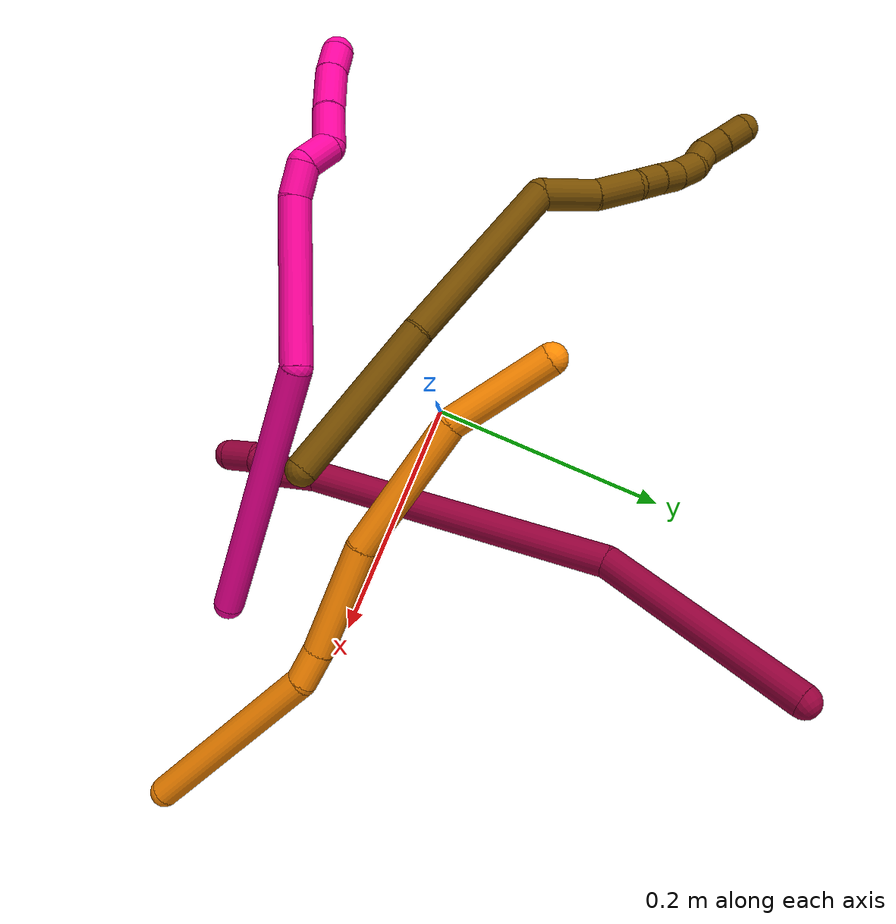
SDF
<sdf version="1.7">
 <world name="default">
  <model name="8">
   <static>0</static>
   <link name="8">
    <collision name="collision-cylinder-e_1_1_4">
     <pose>0.008684 -0.029291 -0.079978 2.79052 0.101601 0.558372</pose>
     <geometry><cylinder><radius>0.0125</radius><length>0.171229</length></cylinder></geometry>
     <surface>
      <friction><ode><mu>1.16</mu><mu2>1.16</mu2><slip1>0</slip1><slip2>0</slip2></ode></friction>
      <contact><ode><kp>1e+06</kp><kd>1</kd><max_vel>0</max_vel><min_depth>0.001</min_depth></ode></contact>
     </surface>
    </collision>
    <visual name="visual-cylinder-e_1_1_4">
     <pose>0.008684 -0.029291 -0.079978 2.79052 0.101601 0.558372</pose>
     <geometry><cylinder><radius>0.0125</radius><length>0.171229</length></cylinder></geometry>
     <material><ambient>0.584314 0 0.227451 1</ambient></material>
    </visual>
    <collision name="collision-cylinder-e_2_4_5">
     <pose>-0.000613 -0.131499 -0.25687 2.49656 -0.14718 -0.434258</pose>
     <geometry><cylinder><radius>0.0125</radius><length>0.245214</length></cylinder></geometry>
     <surface>
      <friction><ode><mu>1.16</mu><mu2>1.16</mu2><slip1>0</slip1><slip2>0</slip2></ode></friction>
      <contact><ode><kp>1e+06</kp><kd>1</kd><max_vel>0</max_vel><min_depth>0.001</min_depth></ode></contact>
     </surface>
    </collision>
    <visual name="visual-cylinder-e_2_4_5">
     <pose>-0.000613 -0.131499 -0.25687 2.49656 -0.14718 -0.434258</pose>
     <geometry><cylinder><radius>0.0125</radius><length>0.245214</length></cylinder></geometry>
     <material><ambient>0.584314 0 0.227451 1</ambient></material>
    </visual>
    <collision name="collision-cylinder-e_3_5_6">
     <pose>-0.025406 -0.215491 -0.364511 2.34028 -0.416069 -0.924665</pose>
     <geometry><cylinder><radius>0.0125</radius><length>0.033713</length></cylinder></geometry>
     <surface>
      <friction><ode><mu>1.16</mu><mu2>1.16</mu2><slip1>0</slip1><slip2>0</slip2></ode></friction>
      <contact><ode><kp>1e+06</kp><kd>1</kd><max_vel>0</max_vel><min_depth>0.001</min_depth></ode></contact>
     </surface>
    </collision>
    <visual name="visual-cylinder-e_3_5_6">
     <pose>-0.025406 -0.215491 -0.364511 2.34028 -0.416069 -0.924665</pose>
     <geometry><cylinder><radius>0.0125</radius><length>0.033713</length></cylinder></geometry>
     <material><ambient>0.584314 0 0.227451 1</ambient></material>
    </visual>
    <collision name="collision-cylinder-e_4_6_7">
     <pose>-0.031509 -0.230352 -0.385416 2.78545 0.065271 0.358881</pose>
     <geometry><cylinder><radius>0.0125</radius><length>0.021764</length></cylinder></geometry>
     <surface>
      <friction><ode><mu>1.16</mu><mu2>1.16</mu2><slip1>0</slip1><slip2>0</slip2></ode></friction>
      <contact><ode><kp>1e+06</kp><kd>1</kd><max_vel>0</max_vel><min_depth>0.001</min_depth></ode></contact>
     </surface>
    </collision>
    <visual name="visual-cylinder-e_4_6_7">
     <pose>-0.031509 -0.230352 -0.385416 2.78545 0.065271 0.358881</pose>
     <geometry><cylinder><radius>0.0125</radius><length>0.021764</length></cylinder></geometry>
     <material><ambient>0.584314 0 0.227451 1</ambient></material>
    </visual>
    <collision name="collision-cylinder-e_5_7_2">
     <pose>-0.030324 -0.244282 -0.405288 2.33351 0.033882 0.079211</pose>
     <geometry><cylinder><radius>0.0125</radius><length>0.02808</length></cylinder></geometry>
     <surface>
      <friction><ode><mu>1.16</mu><mu2>1.16</mu2><slip1>0</slip1><slip2>0</slip2></ode></friction>
      <contact><ode><kp>1e+06</kp><kd>1</kd><max_vel>0</max_vel><min_depth>0.001</min_depth></ode></contact>
     </surface>
    </collision>
    <visual name="visual-cylinder-e_5_7_2">
     <pose>-0.030324 -0.244282 -0.405288 2.33351 0.033882 0.079211</pose>
     <geometry><cylinder><radius>0.0125</radius><length>0.02808</length></cylinder></geometry>
     <material><ambient>0.584314 0 0.227451 1</ambient></material>
    </visual>
    <collision name="collision-sphere-2">
     <pose>-0.029848 -0.254427 -0.414982 0 -0 0</pose>
     <geometry><sphere><radius>0.0125</radius></sphere></geometry>
     <surface>
      <friction><ode><mu>1.16</mu><mu2>1.16</mu2><slip1>0</slip1><slip2>0</slip2></ode></friction>
      <contact><ode><kp>1e+06</kp><kd>1</kd><max_vel>0</max_vel><min_depth>0.001</min_depth></ode></contact>
     </surface>
    </collision>
    <visual name="visual-sphere-2">
     <pose>-0.029848 -0.254427 -0.414982 0 -0 0</pose>
     <geometry><sphere><radius>0.0125</radius></sphere></geometry>
     <material><ambient>0.584314 0 0.227451 1</ambient></material>
    </visual>
    <collision name="collision-sphere-7">
     <pose>-0.0308 -0.234138 -0.395593 0 -0 0</pose>
     <geometry><sphere><radius>0.0125</radius></sphere></geometry>
     <surface>
      <friction><ode><mu>1.16</mu><mu2>1.16</mu2><slip1>0</slip1><slip2>0</slip2></ode></friction>
      <contact><ode><kp>1e+06</kp><kd>1</kd><max_vel>0</max_vel><min_depth>0.001</min_depth></ode></contact>
     </surface>
    </collision>
    <visual name="visual-sphere-7">
     <pose>-0.0308 -0.234138 -0.395593 0 -0 0</pose>
     <geometry><sphere><radius>0.0125</radius></sphere></geometry>
     <material><ambient>0.584314 0 0.227451 1</ambient></material>
    </visual>
    <collision name="collision-sphere-6">
     <pose>-0.032219 -0.226566 -0.375239 0 -0 0</pose>
     <geometry><sphere><radius>0.0125</radius></sphere></geometry>
     <surface>
      <friction><ode><mu>1.16</mu><mu2>1.16</mu2><slip1>0</slip1><slip2>0</slip2></ode></friction>
      <contact><ode><kp>1e+06</kp><kd>1</kd><max_vel>0</max_vel><min_depth>0.001</min_depth></ode></contact>
     </surface>
    </collision>
    <visual name="visual-sphere-6">
     <pose>-0.032219 -0.226566 -0.375239 0 -0 0</pose>
     <geometry><sphere><radius>0.0125</radius></sphere></geometry>
     <material><ambient>0.584314 0 0.227451 1</ambient></material>
    </visual>
    <collision name="collision-sphere-5">
     <pose>-0.018593 -0.204416 -0.353784 0 -0 0</pose>
     <geometry><sphere><radius>0.0125</radius></sphere></geometry>
     <surface>
      <friction><ode><mu>1.16</mu><mu2>1.16</mu2><slip1>0</slip1><slip2>0</slip2></ode></friction>
      <contact><ode><kp>1e+06</kp><kd>1</kd><max_vel>0</max_vel><min_depth>0.001</min_depth></ode></contact>
     </surface>
    </collision>
    <visual name="visual-sphere-5">
     <pose>-0.018593 -0.204416 -0.353784 0 -0 0</pose>
     <geometry><sphere><radius>0.0125</radius></sphere></geometry>
     <material><ambient>0.584314 0 0.227451 1</ambient></material>
    </visual>
    <collision name="collision-sphere-1">
     <geometry><sphere><radius>0.0125</radius></sphere></geometry>
     <surface>
      <friction><ode><mu>1.16</mu><mu2>1.16</mu2><slip1>0</slip1><slip2>0</slip2></ode></friction>
      <contact><ode><kp>1e+06</kp><kd>1</kd><max_vel>0</max_vel><min_depth>0.001</min_depth></ode></contact>
     </surface>
    </collision>
    <visual name="visual-sphere-1">
     <geometry><sphere><radius>0.0125</radius></sphere></geometry>
     <material><ambient>0.584314 0 0.227451 1</ambient></material>
    </visual>
    <collision name="collision-sphere-4">
     <pose>0.017367 -0.058582 -0.159956 0 -0 0</pose>
     <geometry><sphere><radius>0.0125</radius></sphere></geometry>
     <surface>
      <friction><ode><mu>1.16</mu><mu2>1.16</mu2><slip1>0</slip1><slip2>0</slip2></ode></friction>
      <contact><ode><kp>1e+06</kp><kd>1</kd><max_vel>0</max_vel><min_depth>0.001</min_depth></ode></contact>
     </surface>
    </collision>
    <visual name="visual-sphere-4">
     <pose>0.017367 -0.058582 -0.159956 0 -0 0</pose>
     <geometry><sphere><radius>0.0125</radius></sphere></geometry>
     <material><ambient>0.584314 0 0.227451 1</ambient></material>
    </visual>
    <inertial>
     <pose>-0.002114 -0.112797 -0.21748 0 -0 0</pose>
     <mass>0.5</mass>
     <inertia>
      <ixx>0.001181</ixx>
      <ixy>0</ixy>
      <ixz>0</ixz>
      <iyy>-0.0015</iyy>
      <iyz>0</iyz>
      <izz>0.000995</izz>
     </inertia>
    </inertial>
   </link>
   <pose>0.08927 0.305083 0.217644 0.687524 1.11132 1.74644</pose>
  </model>
  <model name="12">
   <static>0</static>
   <link name="12">
    <collision name="collision-cylinder-e_1_1_4">
     <pose>-0.060163 -0.024144 0.016681 0.966226 -1.11698 -0.633485</pose>
     <geometry><cylinder><radius>0.0125</radius><length>0.133878</length></cylinder></geometry>
     <surface>
      <friction><ode><mu>1.16</mu><mu2>1.16</mu2><slip1>0</slip1><slip2>0</slip2></ode></friction>
      <contact><ode><kp>1e+06</kp><kd>1</kd><max_vel>0</max_vel><min_depth>0.001</min_depth></ode></contact>
     </surface>
    </collision>
    <visual name="visual-cylinder-e_1_1_4">
     <pose>-0.060163 -0.024144 0.016681 0.966226 -1.11698 -0.633485</pose>
     <geometry><cylinder><radius>0.0125</radius><length>0.133878</length></cylinder></geometry>
     <material><ambient>0.466667 0.301961 0 1</ambient></material>
    </visual>
    <collision name="collision-cylinder-e_2_4_5">
     <pose>-0.191271 -0.072109 0.042318 1.21115 -1.22638 -0.906701</pose>
     <geometry><cylinder><radius>0.0125</radius><length>0.150741</length></cylinder></geometry>
     <surface>
      <friction><ode><mu>1.16</mu><mu2>1.16</mu2><slip1>0</slip1><slip2>0</slip2></ode></friction>
      <contact><ode><kp>1e+06</kp><kd>1</kd><max_vel>0</max_vel><min_depth>0.001</min_depth></ode></contact>
     </surface>
    </collision>
    <visual name="visual-cylinder-e_2_4_5">
     <pose>-0.191271 -0.072109 0.042318 1.21115 -1.22638 -0.906701</pose>
     <geometry><cylinder><radius>0.0125</radius><length>0.150741</length></cylinder></geometry>
     <material><ambient>0.466667 0.301961 0 1</ambient></material>
    </visual>
    <collision name="collision-cylinder-e_3_5_6">
     <pose>-0.283112 -0.085462 0.055057 -1.22397 -1.08137 0.797607</pose>
     <geometry><cylinder><radius>0.0125</radius><length>0.047352</length></cylinder></geometry>
     <surface>
      <friction><ode><mu>1.16</mu><mu2>1.16</mu2><slip1>0</slip1><slip2>0</slip2></ode></friction>
      <contact><ode><kp>1e+06</kp><kd>1</kd><max_vel>0</max_vel><min_depth>0.001</min_depth></ode></contact>
     </surface>
    </collision>
    <visual name="visual-cylinder-e_3_5_6">
     <pose>-0.283112 -0.085462 0.055057 -1.22397 -1.08137 0.797607</pose>
     <geometry><cylinder><radius>0.0125</radius><length>0.047352</length></cylinder></geometry>
     <material><ambient>0.466667 0.301961 0 1</ambient></material>
    </visual>
    <collision name="collision-cylinder-e_4_6_7">
     <pose>-0.321689 -0.070793 0.062725 -0.82453 -1.25784 0.616025</pose>
     <geometry><cylinder><radius>0.0125</radius><length>0.037166</length></cylinder></geometry>
     <surface>
      <friction><ode><mu>1.16</mu><mu2>1.16</mu2><slip1>0</slip1><slip2>0</slip2></ode></friction>
      <contact><ode><kp>1e+06</kp><kd>1</kd><max_vel>0</max_vel><min_depth>0.001</min_depth></ode></contact>
     </surface>
    </collision>
    <visual name="visual-cylinder-e_4_6_7">
     <pose>-0.321689 -0.070793 0.062725 -0.82453 -1.25784 0.616025</pose>
     <geometry><cylinder><radius>0.0125</radius><length>0.037166</length></cylinder></geometry>
     <material><ambient>0.466667 0.301961 0 1</ambient></material>
    </visual>
    <collision name="collision-cylinder-e_5_7_8">
     <pose>-0.351135 -0.06463 0.065225 -2.18522 -1.36943 2.01036</pose>
     <geometry><cylinder><radius>0.0125</radius><length>0.024016</length></cylinder></geometry>
     <surface>
      <friction><ode><mu>1.16</mu><mu2>1.16</mu2><slip1>0</slip1><slip2>0</slip2></ode></friction>
      <contact><ode><kp>1e+06</kp><kd>1</kd><max_vel>0</max_vel><min_depth>0.001</min_depth></ode></contact>
     </surface>
    </collision>
    <visual name="visual-cylinder-e_5_7_8">
     <pose>-0.351135 -0.06463 0.065225 -2.18522 -1.36943 2.01036</pose>
     <geometry><cylinder><radius>0.0125</radius><length>0.024016</length></cylinder></geometry>
     <material><ambient>0.466667 0.301961 0 1</ambient></material>
    </visual>
    <collision name="collision-cylinder-e_6_8_9">
     <pose>-0.373845 -0.060526 0.062215 -2.2198 -1.32998 2.01255</pose>
     <geometry><cylinder><radius>0.0125</radius><length>0.022541</length></cylinder></geometry>
     <surface>
      <friction><ode><mu>1.16</mu><mu2>1.16</mu2><slip1>0</slip1><slip2>0</slip2></ode></friction>
      <contact><ode><kp>1e+06</kp><kd>1</kd><max_vel>0</max_vel><min_depth>0.001</min_depth></ode></contact>
     </surface>
    </collision>
    <visual name="visual-cylinder-e_6_8_9">
     <pose>-0.373845 -0.060526 0.062215 -2.2198 -1.32998 2.01255</pose>
     <geometry><cylinder><radius>0.0125</radius><length>0.022541</length></cylinder></geometry>
     <material><ambient>0.466667 0.301961 0 1</ambient></material>
    </visual>
    <collision name="collision-cylinder-e_7_9_10">
     <pose>-0.395995 -0.057893 0.060897 -1.01349 -1.51914 0.970244</pose>
     <geometry><cylinder><radius>0.0125</radius><length>0.022439</length></cylinder></geometry>
     <surface>
      <friction><ode><mu>1.16</mu><mu2>1.16</mu2><slip1>0</slip1><slip2>0</slip2></ode></friction>
      <contact><ode><kp>1e+06</kp><kd>1</kd><max_vel>0</max_vel><min_depth>0.001</min_depth></ode></contact>
     </surface>
    </collision>
    <visual name="visual-cylinder-e_7_9_10">
     <pose>-0.395995 -0.057893 0.060897 -1.01349 -1.51914 0.970244</pose>
     <geometry><cylinder><radius>0.0125</radius><length>0.022439</length></cylinder></geometry>
     <material><ambient>0.466667 0.301961 0 1</ambient></material>
    </visual>
    <collision name="collision-cylinder-e_8_10_11">
     <pose>-0.416643 -0.060417 0.059154 2.16784 -1.20237 -1.82693</pose>
     <geometry><cylinder><radius>0.0125</radius><length>0.020247</length></cylinder></geometry>
     <surface>
      <friction><ode><mu>1.16</mu><mu2>1.16</mu2><slip1>0</slip1><slip2>0</slip2></ode></friction>
      <contact><ode><kp>1e+06</kp><kd>1</kd><max_vel>0</max_vel><min_depth>0.001</min_depth></ode></contact>
     </surface>
    </collision>
    <visual name="visual-cylinder-e_8_10_11">
     <pose>-0.416643 -0.060417 0.059154 2.16784 -1.20237 -1.82693</pose>
     <geometry><cylinder><radius>0.0125</radius><length>0.020247</length></cylinder></geometry>
     <material><ambient>0.466667 0.301961 0 1</ambient></material>
    </visual>
    <collision name="collision-cylinder-e_9_11_12">
     <pose>-0.435607 -0.063864 0.060438 0.128873 -1.23137 -0.09123</pose>
     <geometry><cylinder><radius>0.0125</radius><length>0.020192</length></cylinder></geometry>
     <surface>
      <friction><ode><mu>1.16</mu><mu2>1.16</mu2><slip1>0</slip1><slip2>0</slip2></ode></friction>
      <contact><ode><kp>1e+06</kp><kd>1</kd><max_vel>0</max_vel><min_depth>0.001</min_depth></ode></contact>
     </surface>
    </collision>
    <visual name="visual-cylinder-e_9_11_12">
     <pose>-0.435607 -0.063864 0.060438 0.128873 -1.23137 -0.09123</pose>
     <geometry><cylinder><radius>0.0125</radius><length>0.020192</length></cylinder></geometry>
     <material><ambient>0.466667 0.301961 0 1</ambient></material>
    </visual>
    <collision name="collision-cylinder-e_10_12_2">
     <pose>-0.455346 -0.065067 0.066898 0.24185 -1.26552 -0.177761</pose>
     <geometry><cylinder><radius>0.0125</radius><length>0.021428</length></cylinder></geometry>
     <surface>
      <friction><ode><mu>1.16</mu><mu2>1.16</mu2><slip1>0</slip1><slip2>0</slip2></ode></friction>
      <contact><ode><kp>1e+06</kp><kd>1</kd><max_vel>0</max_vel><min_depth>0.001</min_depth></ode></contact>
     </surface>
    </collision>
    <visual name="visual-cylinder-e_10_12_2">
     <pose>-0.455346 -0.065067 0.066898 0.24185 -1.26552 -0.177761</pose>
     <geometry><cylinder><radius>0.0125</radius><length>0.021428</length></cylinder></geometry>
     <material><ambient>0.466667 0.301961 0 1</ambient></material>
    </visual>
    <collision name="collision-sphere-2">
     <pose>-0.465565 -0.065838 0.070024 0 -0 0</pose>
     <geometry><sphere><radius>0.0125</radius></sphere></geometry>
     <surface>
      <friction><ode><mu>1.16</mu><mu2>1.16</mu2><slip1>0</slip1><slip2>0</slip2></ode></friction>
      <contact><ode><kp>1e+06</kp><kd>1</kd><max_vel>0</max_vel><min_depth>0.001</min_depth></ode></contact>
     </surface>
    </collision>
    <visual name="visual-sphere-2">
     <pose>-0.465565 -0.065838 0.070024 0 -0 0</pose>
     <geometry><sphere><radius>0.0125</radius></sphere></geometry>
     <material><ambient>0.466667 0.301961 0 1</ambient></material>
    </visual>
    <collision name="collision-sphere-12">
     <pose>-0.445127 -0.064296 0.063771 0 -0 0</pose>
     <geometry><sphere><radius>0.0125</radius></sphere></geometry>
     <surface>
      <friction><ode><mu>1.16</mu><mu2>1.16</mu2><slip1>0</slip1><slip2>0</slip2></ode></friction>
      <contact><ode><kp>1e+06</kp><kd>1</kd><max_vel>0</max_vel><min_depth>0.001</min_depth></ode></contact>
     </surface>
    </collision>
    <visual name="visual-sphere-12">
     <pose>-0.445127 -0.064296 0.063771 0 -0 0</pose>
     <geometry><sphere><radius>0.0125</radius></sphere></geometry>
     <material><ambient>0.466667 0.301961 0 1</ambient></material>
    </visual>
    <collision name="collision-sphere-11">
     <pose>-0.426087 -0.063432 0.057104 0 -0 0</pose>
     <geometry><sphere><radius>0.0125</radius></sphere></geometry>
     <surface>
      <friction><ode><mu>1.16</mu><mu2>1.16</mu2><slip1>0</slip1><slip2>0</slip2></ode></friction>
      <contact><ode><kp>1e+06</kp><kd>1</kd><max_vel>0</max_vel><min_depth>0.001</min_depth></ode></contact>
     </surface>
    </collision>
    <visual name="visual-sphere-11">
     <pose>-0.426087 -0.063432 0.057104 0 -0 0</pose>
     <geometry><sphere><radius>0.0125</radius></sphere></geometry>
     <material><ambient>0.466667 0.301961 0 1</ambient></material>
    </visual>
    <collision name="collision-sphere-10">
     <pose>-0.407199 -0.057401 0.061204 0 -0 0</pose>
     <geometry><sphere><radius>0.0125</radius></sphere></geometry>
     <surface>
      <friction><ode><mu>1.16</mu><mu2>1.16</mu2><slip1>0</slip1><slip2>0</slip2></ode></friction>
      <contact><ode><kp>1e+06</kp><kd>1</kd><max_vel>0</max_vel><min_depth>0.001</min_depth></ode></contact>
     </surface>
    </collision>
    <visual name="visual-sphere-10">
     <pose>-0.407199 -0.057401 0.061204 0 -0 0</pose>
     <geometry><sphere><radius>0.0125</radius></sphere></geometry>
     <material><ambient>0.466667 0.301961 0 1</ambient></material>
    </visual>
    <collision name="collision-sphere-9">
     <pose>-0.38479 -0.058385 0.060591 0 -0 0</pose>
     <geometry><sphere><radius>0.0125</radius></sphere></geometry>
     <surface>
      <friction><ode><mu>1.16</mu><mu2>1.16</mu2><slip1>0</slip1><slip2>0</slip2></ode></friction>
      <contact><ode><kp>1e+06</kp><kd>1</kd><max_vel>0</max_vel><min_depth>0.001</min_depth></ode></contact>
     </surface>
    </collision>
    <visual name="visual-sphere-9">
     <pose>-0.38479 -0.058385 0.060591 0 -0 0</pose>
     <geometry><sphere><radius>0.0125</radius></sphere></geometry>
     <material><ambient>0.466667 0.301961 0 1</ambient></material>
    </visual>
    <collision name="collision-sphere-4">
     <pose>-0.120327 -0.048289 0.033361 0 -0 0</pose>
     <geometry><sphere><radius>0.0125</radius></sphere></geometry>
     <surface>
      <friction><ode><mu>1.16</mu><mu2>1.16</mu2><slip1>0</slip1><slip2>0</slip2></ode></friction>
      <contact><ode><kp>1e+06</kp><kd>1</kd><max_vel>0</max_vel><min_depth>0.001</min_depth></ode></contact>
     </surface>
    </collision>
    <visual name="visual-sphere-4">
     <pose>-0.120327 -0.048289 0.033361 0 -0 0</pose>
     <geometry><sphere><radius>0.0125</radius></sphere></geometry>
     <material><ambient>0.466667 0.301961 0 1</ambient></material>
    </visual>
    <collision name="collision-sphere-1">
     <geometry><sphere><radius>0.0125</radius></sphere></geometry>
     <surface>
      <friction><ode><mu>1.16</mu><mu2>1.16</mu2><slip1>0</slip1><slip2>0</slip2></ode></friction>
      <contact><ode><kp>1e+06</kp><kd>1</kd><max_vel>0</max_vel><min_depth>0.001</min_depth></ode></contact>
     </surface>
    </collision>
    <visual name="visual-sphere-1">
     <geometry><sphere><radius>0.0125</radius></sphere></geometry>
     <material><ambient>0.466667 0.301961 0 1</ambient></material>
    </visual>
    <collision name="collision-sphere-8">
     <pose>-0.3629 -0.062668 0.06384 0 -0 0</pose>
     <geometry><sphere><radius>0.0125</radius></sphere></geometry>
     <surface>
      <friction><ode><mu>1.16</mu><mu2>1.16</mu2><slip1>0</slip1><slip2>0</slip2></ode></friction>
      <contact><ode><kp>1e+06</kp><kd>1</kd><max_vel>0</max_vel><min_depth>0.001</min_depth></ode></contact>
     </surface>
    </collision>
    <visual name="visual-sphere-8">
     <pose>-0.3629 -0.062668 0.06384 0 -0 0</pose>
     <geometry><sphere><radius>0.0125</radius></sphere></geometry>
     <material><ambient>0.466667 0.301961 0 1</ambient></material>
    </visual>
    <collision name="collision-sphere-5">
     <pose>-0.262216 -0.095929 0.051274 0 -0 0</pose>
     <geometry><sphere><radius>0.0125</radius></sphere></geometry>
     <surface>
      <friction><ode><mu>1.16</mu><mu2>1.16</mu2><slip1>0</slip1><slip2>0</slip2></ode></friction>
      <contact><ode><kp>1e+06</kp><kd>1</kd><max_vel>0</max_vel><min_depth>0.001</min_depth></ode></contact>
     </surface>
    </collision>
    <visual name="visual-sphere-5">
     <pose>-0.262216 -0.095929 0.051274 0 -0 0</pose>
     <geometry><sphere><radius>0.0125</radius></sphere></geometry>
     <material><ambient>0.466667 0.301961 0 1</ambient></material>
    </visual>
    <collision name="collision-sphere-6">
     <pose>-0.304009 -0.074994 0.058841 0 -0 0</pose>
     <geometry><sphere><radius>0.0125</radius></sphere></geometry>
     <surface>
      <friction><ode><mu>1.16</mu><mu2>1.16</mu2><slip1>0</slip1><slip2>0</slip2></ode></friction>
      <contact><ode><kp>1e+06</kp><kd>1</kd><max_vel>0</max_vel><min_depth>0.001</min_depth></ode></contact>
     </surface>
    </collision>
    <visual name="visual-sphere-6">
     <pose>-0.304009 -0.074994 0.058841 0 -0 0</pose>
     <geometry><sphere><radius>0.0125</radius></sphere></geometry>
     <material><ambient>0.466667 0.301961 0 1</ambient></material>
    </visual>
    <collision name="collision-sphere-7">
     <pose>-0.339369 -0.066592 0.066609 0 -0 0</pose>
     <geometry><sphere><radius>0.0125</radius></sphere></geometry>
     <surface>
      <friction><ode><mu>1.16</mu><mu2>1.16</mu2><slip1>0</slip1><slip2>0</slip2></ode></friction>
      <contact><ode><kp>1e+06</kp><kd>1</kd><max_vel>0</max_vel><min_depth>0.001</min_depth></ode></contact>
     </surface>
    </collision>
    <visual name="visual-sphere-7">
     <pose>-0.339369 -0.066592 0.066609 0 -0 0</pose>
     <geometry><sphere><radius>0.0125</radius></sphere></geometry>
     <material><ambient>0.466667 0.301961 0 1</ambient></material>
    </visual>
    <inertial>
     <pose>-0.229966 -0.057805 0.043475 0 -0 0</pose>
     <mass>0.5</mass>
     <inertia>
      <ixx>-2.4e-05</ixx>
      <ixy>0</ixy>
      <ixz>0</ixz>
      <iyy>0.000343</iyy>
      <iyz>0</iyz>
      <izz>0.000649</izz>
     </inertia>
    </inertial>
   </link>
   <pose>0.082543 -0.072258 0.1481 -0.150892 -0.459798 -0.610039</pose>
  </model>
  <model name="18">
   <static>0</static>
   <link name="18">
    <collision name="collision-cylinder-e_1_1_4">
     <pose>-0.025147 -0.058482 0.094864 0.552449 -0.221931 -0.06315</pose>
     <geometry><cylinder><radius>0.0125</radius><length>0.228488</length></cylinder></geometry>
     <surface>
      <friction><ode><mu>1.16</mu><mu2>1.16</mu2><slip1>0</slip1><slip2>0</slip2></ode></friction>
      <contact><ode><kp>1e+06</kp><kd>1</kd><max_vel>0</max_vel><min_depth>0.001</min_depth></ode></contact>
     </surface>
    </collision>
    <visual name="visual-cylinder-e_1_1_4">
     <pose>-0.025147 -0.058482 0.094864 0.552449 -0.221931 -0.06315</pose>
     <geometry><cylinder><radius>0.0125</radius><length>0.228488</length></cylinder></geometry>
     <material><ambient>1 0.007843 0.615686 1</ambient></material>
    </visual>
    <collision name="collision-cylinder-e_2_4_5">
     <pose>-0.088602 -0.116531 0.2388 -0.008813 -0.662814 0.003033</pose>
     <geometry><cylinder><radius>0.0125</radius><length>0.124511</length></cylinder></geometry>
     <surface>
      <friction><ode><mu>1.16</mu><mu2>1.16</mu2><slip1>0</slip1><slip2>0</slip2></ode></friction>
      <contact><ode><kp>1e+06</kp><kd>1</kd><max_vel>0</max_vel><min_depth>0.001</min_depth></ode></contact>
     </surface>
    </collision>
    <visual name="visual-cylinder-e_2_4_5">
     <pose>-0.088602 -0.116531 0.2388 -0.008813 -0.662814 0.003033</pose>
     <geometry><cylinder><radius>0.0125</radius><length>0.124511</length></cylinder></geometry>
     <material><ambient>1 0.007843 0.615686 1</ambient></material>
    </visual>
    <collision name="collision-cylinder-e_3_5_6">
     <pose>-0.131985 -0.116044 0.299768 -0.004586 -0.403228 0.000937</pose>
     <geometry><cylinder><radius>0.0125</radius><length>0.025867</length></cylinder></geometry>
     <surface>
      <friction><ode><mu>1.16</mu><mu2>1.16</mu2><slip1>0</slip1><slip2>0</slip2></ode></friction>
      <contact><ode><kp>1e+06</kp><kd>1</kd><max_vel>0</max_vel><min_depth>0.001</min_depth></ode></contact>
     </surface>
    </collision>
    <visual name="visual-cylinder-e_3_5_6">
     <pose>-0.131985 -0.116044 0.299768 -0.004586 -0.403228 0.000937</pose>
     <geometry><cylinder><radius>0.0125</radius><length>0.025867</length></cylinder></geometry>
     <material><ambient>1 0.007843 0.615686 1</ambient></material>
    </visual>
    <collision name="collision-cylinder-e_4_6_7">
     <pose>-0.135535 -0.10886 0.323524 -0.541309 0.109785 -0.030489</pose>
     <geometry><cylinder><radius>0.0125</radius><length>0.027843</length></cylinder></geometry>
     <surface>
      <friction><ode><mu>1.16</mu><mu2>1.16</mu2><slip1>0</slip1><slip2>0</slip2></ode></friction>
      <contact><ode><kp>1e+06</kp><kd>1</kd><max_vel>0</max_vel><min_depth>0.001</min_depth></ode></contact>
     </surface>
    </collision>
    <visual name="visual-cylinder-e_4_6_7">
     <pose>-0.135535 -0.10886 0.323524 -0.541309 0.109785 -0.030489</pose>
     <geometry><cylinder><radius>0.0125</radius><length>0.027843</length></cylinder></geometry>
     <material><ambient>1 0.007843 0.615686 1</ambient></material>
    </visual>
    <collision name="collision-cylinder-e_5_7_8">
     <pose>-0.143941 -0.096117 0.346844 -0.455361 -0.661394 0.158751</pose>
     <geometry><cylinder><radius>0.0125</radius><length>0.032341</length></cylinder></geometry>
     <surface>
      <friction><ode><mu>1.16</mu><mu2>1.16</mu2><slip1>0</slip1><slip2>0</slip2></ode></friction>
      <contact><ode><kp>1e+06</kp><kd>1</kd><max_vel>0</max_vel><min_depth>0.001</min_depth></ode></contact>
     </surface>
    </collision>
    <visual name="visual-cylinder-e_5_7_8">
     <pose>-0.143941 -0.096117 0.346844 -0.455361 -0.661394 0.158751</pose>
     <geometry><cylinder><radius>0.0125</radius><length>0.032341</length></cylinder></geometry>
     <material><ambient>1 0.007843 0.615686 1</ambient></material>
    </visual>
    <collision name="collision-cylinder-e_6_8_9">
     <pose>-0.164553 -0.082324 0.372124 -0.534541 -0.586819 0.165083</pose>
     <geometry><cylinder><radius>0.0125</radius><length>0.038573</length></cylinder></geometry>
     <surface>
      <friction><ode><mu>1.16</mu><mu2>1.16</mu2><slip1>0</slip1><slip2>0</slip2></ode></friction>
      <contact><ode><kp>1e+06</kp><kd>1</kd><max_vel>0</max_vel><min_depth>0.001</min_depth></ode></contact>
     </surface>
    </collision>
    <visual name="visual-cylinder-e_6_8_9">
     <pose>-0.164553 -0.082324 0.372124 -0.534541 -0.586819 0.165083</pose>
     <geometry><cylinder><radius>0.0125</radius><length>0.038573</length></cylinder></geometry>
     <material><ambient>1 0.007843 0.615686 1</ambient></material>
    </visual>
    <collision name="collision-cylinder-e_7_9_2">
     <pose>-0.179992 -0.06959 0.394988 -0.466355 -0.439436 0.105978</pose>
     <geometry><cylinder><radius>0.0125</radius><length>0.022377</length></cylinder></geometry>
     <surface>
      <friction><ode><mu>1.16</mu><mu2>1.16</mu2><slip1>0</slip1><slip2>0</slip2></ode></friction>
      <contact><ode><kp>1e+06</kp><kd>1</kd><max_vel>0</max_vel><min_depth>0.001</min_depth></ode></contact>
     </surface>
    </collision>
    <visual name="visual-cylinder-e_7_9_2">
     <pose>-0.179992 -0.06959 0.394988 -0.466355 -0.439436 0.105978</pose>
     <geometry><cylinder><radius>0.0125</radius><length>0.022377</length></cylinder></geometry>
     <material><ambient>1 0.007843 0.615686 1</ambient></material>
    </visual>
    <collision name="collision-sphere-2">
     <pose>-0.184752 -0.065037 0.404032 0 -0 0</pose>
     <geometry><sphere><radius>0.0125</radius></sphere></geometry>
     <surface>
      <friction><ode><mu>1.16</mu><mu2>1.16</mu2><slip1>0</slip1><slip2>0</slip2></ode></friction>
      <contact><ode><kp>1e+06</kp><kd>1</kd><max_vel>0</max_vel><min_depth>0.001</min_depth></ode></contact>
     </surface>
    </collision>
    <visual name="visual-sphere-2">
     <pose>-0.184752 -0.065037 0.404032 0 -0 0</pose>
     <geometry><sphere><radius>0.0125</radius></sphere></geometry>
     <material><ambient>1 0.007843 0.615686 1</ambient></material>
    </visual>
    <collision name="collision-sphere-9">
     <pose>-0.175232 -0.074142 0.385943 0 -0 0</pose>
     <geometry><sphere><radius>0.0125</radius></sphere></geometry>
     <surface>
      <friction><ode><mu>1.16</mu><mu2>1.16</mu2><slip1>0</slip1><slip2>0</slip2></ode></friction>
      <contact><ode><kp>1e+06</kp><kd>1</kd><max_vel>0</max_vel><min_depth>0.001</min_depth></ode></contact>
     </surface>
    </collision>
    <visual name="visual-sphere-9">
     <pose>-0.175232 -0.074142 0.385943 0 -0 0</pose>
     <geometry><sphere><radius>0.0125</radius></sphere></geometry>
     <material><ambient>1 0.007843 0.615686 1</ambient></material>
    </visual>
    <collision name="collision-sphere-4">
     <pose>-0.050293 -0.116964 0.189728 0 -0 0</pose>
     <geometry><sphere><radius>0.0125</radius></sphere></geometry>
     <surface>
      <friction><ode><mu>1.16</mu><mu2>1.16</mu2><slip1>0</slip1><slip2>0</slip2></ode></friction>
      <contact><ode><kp>1e+06</kp><kd>1</kd><max_vel>0</max_vel><min_depth>0.001</min_depth></ode></contact>
     </surface>
    </collision>
    <visual name="visual-sphere-4">
     <pose>-0.050293 -0.116964 0.189728 0 -0 0</pose>
     <geometry><sphere><radius>0.0125</radius></sphere></geometry>
     <material><ambient>1 0.007843 0.615686 1</ambient></material>
    </visual>
    <collision name="collision-sphere-1">
     <geometry><sphere><radius>0.0125</radius></sphere></geometry>
     <surface>
      <friction><ode><mu>1.16</mu><mu2>1.16</mu2><slip1>0</slip1><slip2>0</slip2></ode></friction>
      <contact><ode><kp>1e+06</kp><kd>1</kd><max_vel>0</max_vel><min_depth>0.001</min_depth></ode></contact>
     </surface>
    </collision>
    <visual name="visual-sphere-1">
     <geometry><sphere><radius>0.0125</radius></sphere></geometry>
     <material><ambient>1 0.007843 0.615686 1</ambient></material>
    </visual>
    <collision name="collision-sphere-8">
     <pose>-0.153874 -0.090505 0.358304 0 -0 0</pose>
     <geometry><sphere><radius>0.0125</radius></sphere></geometry>
     <surface>
      <friction><ode><mu>1.16</mu><mu2>1.16</mu2><slip1>0</slip1><slip2>0</slip2></ode></friction>
      <contact><ode><kp>1e+06</kp><kd>1</kd><max_vel>0</max_vel><min_depth>0.001</min_depth></ode></contact>
     </surface>
    </collision>
    <visual name="visual-sphere-8">
     <pose>-0.153874 -0.090505 0.358304 0 -0 0</pose>
     <geometry><sphere><radius>0.0125</radius></sphere></geometry>
     <material><ambient>1 0.007843 0.615686 1</ambient></material>
    </visual>
    <collision name="collision-sphere-5">
     <pose>-0.12691 -0.116099 0.287872 0 -0 0</pose>
     <geometry><sphere><radius>0.0125</radius></sphere></geometry>
     <surface>
      <friction><ode><mu>1.16</mu><mu2>1.16</mu2><slip1>0</slip1><slip2>0</slip2></ode></friction>
      <contact><ode><kp>1e+06</kp><kd>1</kd><max_vel>0</max_vel><min_depth>0.001</min_depth></ode></contact>
     </surface>
    </collision>
    <visual name="visual-sphere-5">
     <pose>-0.12691 -0.116099 0.287872 0 -0 0</pose>
     <geometry><sphere><radius>0.0125</radius></sphere></geometry>
     <material><ambient>1 0.007843 0.615686 1</ambient></material>
    </visual>
    <collision name="collision-sphere-6">
     <pose>-0.13706 -0.11599 0.311664 0 -0 0</pose>
     <geometry><sphere><radius>0.0125</radius></sphere></geometry>
     <surface>
      <friction><ode><mu>1.16</mu><mu2>1.16</mu2><slip1>0</slip1><slip2>0</slip2></ode></friction>
      <contact><ode><kp>1e+06</kp><kd>1</kd><max_vel>0</max_vel><min_depth>0.001</min_depth></ode></contact>
     </surface>
    </collision>
    <visual name="visual-sphere-6">
     <pose>-0.13706 -0.11599 0.311664 0 -0 0</pose>
     <geometry><sphere><radius>0.0125</radius></sphere></geometry>
     <material><ambient>1 0.007843 0.615686 1</ambient></material>
    </visual>
    <collision name="collision-sphere-7">
     <pose>-0.134009 -0.101729 0.335383 0 -0 0</pose>
     <geometry><sphere><radius>0.0125</radius></sphere></geometry>
     <surface>
      <friction><ode><mu>1.16</mu><mu2>1.16</mu2><slip1>0</slip1><slip2>0</slip2></ode></friction>
      <contact><ode><kp>1e+06</kp><kd>1</kd><max_vel>0</max_vel><min_depth>0.001</min_depth></ode></contact>
     </surface>
    </collision>
    <visual name="visual-sphere-7">
     <pose>-0.134009 -0.101729 0.335383 0 -0 0</pose>
     <geometry><sphere><radius>0.0125</radius></sphere></geometry>
     <material><ambient>1 0.007843 0.615686 1</ambient></material>
    </visual>
    <inertial>
     <pose>-0.077991 -0.083492 0.205161 0 -0 0</pose>
     <mass>0.5</mass>
     <inertia>
      <ixx>0.001048</ixx>
      <ixy>0</ixy>
      <ixz>0</ixz>
      <iyy>0.000976</iyy>
      <iyz>0</iyz>
      <izz>0.000868</izz>
     </inertia>
    </inertial>
   </link>
   <pose>0.214054 -0.097236 0.035825 -1.58023 -0.049107 1.32575</pose>
  </model>
  <model name="19">
   <static>0</static>
   <link name="19">
    <collision name="collision-cylinder-e_1_1_4">
     <pose>-0.075186 0.040953 0.002394 -1.5124 -1.07133 1.02077</pose>
     <geometry><cylinder><radius>0.0125</radius><length>0.171299</length></cylinder></geometry>
     <surface>
      <friction><ode><mu>1.16</mu><mu2>1.16</mu2><slip1>0</slip1><slip2>0</slip2></ode></friction>
      <contact><ode><kp>1e+06</kp><kd>1</kd><max_vel>0</max_vel><min_depth>0.001</min_depth></ode></contact>
     </surface>
    </collision>
    <visual name="visual-cylinder-e_1_1_4">
     <pose>-0.075186 0.040953 0.002394 -1.5124 -1.07133 1.02077</pose>
     <geometry><cylinder><radius>0.0125</radius><length>0.171299</length></cylinder></geometry>
     <material><ambient>0.996078 0.537255 0 1</ambient></material>
    </visual>
    <collision name="collision-cylinder-e_2_4_5">
     <pose>-0.160133 0.092913 0.007323 -1.34445 -0.712637 0.575995</pose>
     <geometry><cylinder><radius>0.0125</radius><length>0.029858</length></cylinder></geometry>
     <surface>
      <friction><ode><mu>1.16</mu><mu2>1.16</mu2><slip1>0</slip1><slip2>0</slip2></ode></friction>
      <contact><ode><kp>1e+06</kp><kd>1</kd><max_vel>0</max_vel><min_depth>0.001</min_depth></ode></contact>
     </surface>
    </collision>
    <visual name="visual-cylinder-e_2_4_5">
     <pose>-0.160133 0.092913 0.007323 -1.34445 -0.712637 0.575995</pose>
     <geometry><cylinder><radius>0.0125</radius><length>0.029858</length></cylinder></geometry>
     <material><ambient>0.996078 0.537255 0 1</ambient></material>
    </visual>
    <collision name="collision-cylinder-e_3_5_6">
     <pose>-0.196777 0.140986 0.015687 -1.4148 -0.621701 0.536153</pose>
     <geometry><cylinder><radius>0.0125</radius><length>0.092315</length></cylinder></geometry>
     <surface>
      <friction><ode><mu>1.16</mu><mu2>1.16</mu2><slip1>0</slip1><slip2>0</slip2></ode></friction>
      <contact><ode><kp>1e+06</kp><kd>1</kd><max_vel>0</max_vel><min_depth>0.001</min_depth></ode></contact>
     </surface>
    </collision>
    <visual name="visual-cylinder-e_3_5_6">
     <pose>-0.196777 0.140986 0.015687 -1.4148 -0.621701 0.536153</pose>
     <geometry><cylinder><radius>0.0125</radius><length>0.092315</length></cylinder></geometry>
     <material><ambient>0.996078 0.537255 0 1</ambient></material>
    </visual>
    <collision name="collision-cylinder-e_4_6_7">
     <pose>-0.267767 0.216885 0.030784 -1.33653 -0.835139 0.67378</pose>
     <geometry><cylinder><radius>0.0125</radius><length>0.118984</length></cylinder></geometry>
     <surface>
      <friction><ode><mu>1.16</mu><mu2>1.16</mu2><slip1>0</slip1><slip2>0</slip2></ode></friction>
      <contact><ode><kp>1e+06</kp><kd>1</kd><max_vel>0</max_vel><min_depth>0.001</min_depth></ode></contact>
     </surface>
    </collision>
    <visual name="visual-cylinder-e_4_6_7">
     <pose>-0.267767 0.216885 0.030784 -1.33653 -0.835139 0.67378</pose>
     <geometry><cylinder><radius>0.0125</radius><length>0.118984</length></cylinder></geometry>
     <material><ambient>0.996078 0.537255 0 1</ambient></material>
    </visual>
    <collision name="collision-cylinder-e_5_7_2">
     <pose>-0.352234 0.270449 0.048419 -1.05421 -1.17336 0.738346</pose>
     <geometry><cylinder><radius>0.0125</radius><length>0.087544</length></cylinder></geometry>
     <surface>
      <friction><ode><mu>1.16</mu><mu2>1.16</mu2><slip1>0</slip1><slip2>0</slip2></ode></friction>
      <contact><ode><kp>1e+06</kp><kd>1</kd><max_vel>0</max_vel><min_depth>0.001</min_depth></ode></contact>
     </surface>
    </collision>
    <visual name="visual-cylinder-e_5_7_2">
     <pose>-0.352234 0.270449 0.048419 -1.05421 -1.17336 0.738346</pose>
     <geometry><cylinder><radius>0.0125</radius><length>0.087544</length></cylinder></geometry>
     <material><ambient>0.996078 0.537255 0 1</ambient></material>
    </visual>
    <collision name="collision-sphere-2">
     <pose>-0.392595 0.285181 0.056787 0 -0 0</pose>
     <geometry><sphere><radius>0.0125</radius></sphere></geometry>
     <surface>
      <friction><ode><mu>1.16</mu><mu2>1.16</mu2><slip1>0</slip1><slip2>0</slip2></ode></friction>
      <contact><ode><kp>1e+06</kp><kd>1</kd><max_vel>0</max_vel><min_depth>0.001</min_depth></ode></contact>
     </surface>
    </collision>
    <visual name="visual-sphere-2">
     <pose>-0.392595 0.285181 0.056787 0 -0 0</pose>
     <geometry><sphere><radius>0.0125</radius></sphere></geometry>
     <material><ambient>0.996078 0.537255 0 1</ambient></material>
    </visual>
    <collision name="collision-sphere-7">
     <pose>-0.311874 0.255718 0.040051 0 -0 0</pose>
     <geometry><sphere><radius>0.0125</radius></sphere></geometry>
     <surface>
      <friction><ode><mu>1.16</mu><mu2>1.16</mu2><slip1>0</slip1><slip2>0</slip2></ode></friction>
      <contact><ode><kp>1e+06</kp><kd>1</kd><max_vel>0</max_vel><min_depth>0.001</min_depth></ode></contact>
     </surface>
    </collision>
    <visual name="visual-sphere-7">
     <pose>-0.311874 0.255718 0.040051 0 -0 0</pose>
     <geometry><sphere><radius>0.0125</radius></sphere></geometry>
     <material><ambient>0.996078 0.537255 0 1</ambient></material>
    </visual>
    <collision name="collision-sphere-6">
     <pose>-0.22366 0.178052 0.021517 0 -0 0</pose>
     <geometry><sphere><radius>0.0125</radius></sphere></geometry>
     <surface>
      <friction><ode><mu>1.16</mu><mu2>1.16</mu2><slip1>0</slip1><slip2>0</slip2></ode></friction>
      <contact><ode><kp>1e+06</kp><kd>1</kd><max_vel>0</max_vel><min_depth>0.001</min_depth></ode></contact>
     </surface>
    </collision>
    <visual name="visual-sphere-6">
     <pose>-0.22366 0.178052 0.021517 0 -0 0</pose>
     <geometry><sphere><radius>0.0125</radius></sphere></geometry>
     <material><ambient>0.996078 0.537255 0 1</ambient></material>
    </visual>
    <collision name="collision-sphere-5">
     <pose>-0.169894 0.103921 0.009858 0 -0 0</pose>
     <geometry><sphere><radius>0.0125</radius></sphere></geometry>
     <surface>
      <friction><ode><mu>1.16</mu><mu2>1.16</mu2><slip1>0</slip1><slip2>0</slip2></ode></friction>
      <contact><ode><kp>1e+06</kp><kd>1</kd><max_vel>0</max_vel><min_depth>0.001</min_depth></ode></contact>
     </surface>
    </collision>
    <visual name="visual-sphere-5">
     <pose>-0.169894 0.103921 0.009858 0 -0 0</pose>
     <geometry><sphere><radius>0.0125</radius></sphere></geometry>
     <material><ambient>0.996078 0.537255 0 1</ambient></material>
    </visual>
    <collision name="collision-sphere-1">
     <geometry><sphere><radius>0.0125</radius></sphere></geometry>
     <surface>
      <friction><ode><mu>1.16</mu><mu2>1.16</mu2><slip1>0</slip1><slip2>0</slip2></ode></friction>
      <contact><ode><kp>1e+06</kp><kd>1</kd><max_vel>0</max_vel><min_depth>0.001</min_depth></ode></contact>
     </surface>
    </collision>
    <visual name="visual-sphere-1">
     <geometry><sphere><radius>0.0125</radius></sphere></geometry>
     <material><ambient>0.996078 0.537255 0 1</ambient></material>
    </visual>
    <collision name="collision-sphere-4">
     <pose>-0.150372 0.081906 0.004788 0 -0 0</pose>
     <geometry><sphere><radius>0.0125</radius></sphere></geometry>
     <surface>
      <friction><ode><mu>1.16</mu><mu2>1.16</mu2><slip1>0</slip1><slip2>0</slip2></ode></friction>
      <contact><ode><kp>1e+06</kp><kd>1</kd><max_vel>0</max_vel><min_depth>0.001</min_depth></ode></contact>
     </surface>
    </collision>
    <visual name="visual-sphere-4">
     <pose>-0.150372 0.081906 0.004788 0 -0 0</pose>
     <geometry><sphere><radius>0.0125</radius></sphere></geometry>
     <material><ambient>0.996078 0.537255 0 1</ambient></material>
    </visual>
    <inertial>
     <pose>-0.197044 0.144573 0.019957 0 -0 0</pose>
     <mass>0.5</mass>
     <inertia>
      <ixx>0.000499</ixx>
      <ixy>0</ixy>
      <ixz>0</ixz>
      <iyy>0.00081</iyy>
      <iyz>0</iyz>
      <izz>0.000207</izz>
     </inertia>
    </inertial>
   </link>
   <pose>0.382235 -0.08681 0.019418 2.89608 0.320297 -0.993413</pose>
  </model>
 </world>
</sdf>
